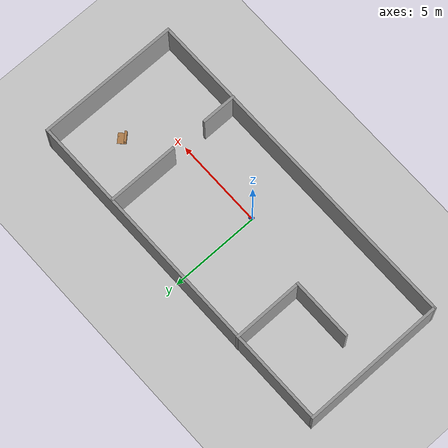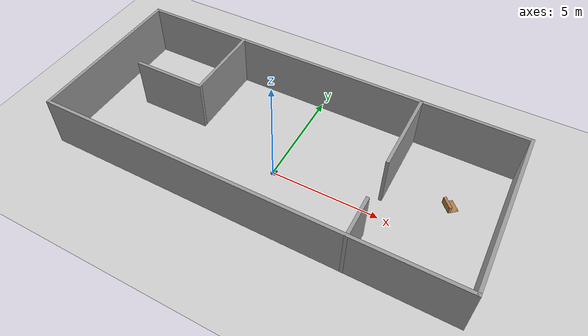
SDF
<sdf version="1.7">
 <world name="default">
  <light name="sun" type="directional">
   <pose>0 0 10 0 -0 0</pose>
   <diffuse>0.8 0.8 0.8 1</diffuse>
   <specular>0.2 0.2 0.2 1</specular>
   <attenuation>
    <range>1000</range>
    <constant>0.9</constant>
    <linear>0.01</linear>
    <quadratic>0.001</quadratic>
   </attenuation>
   <direction>-0.5 0.1 -0.9</direction>
   <spot><inner_angle>0</inner_angle><outer_angle>0</outer_angle><falloff>0</falloff></spot>
  </light>
  <model name="ground_plane">
   <static>1</static>
   <link name="link">
    <collision name="collision">
     <geometry><plane><normal>0 0 1</normal><size>100 100</size></plane></geometry>
     <surface>
      <contact><collide_bitmask>65535</collide_bitmask></contact>
      <friction><ode><mu>100</mu><mu2>50</mu2></ode></friction>
     </surface>
    </collision>
    <visual name="visual">
     <cast_shadows>0</cast_shadows>
     <geometry><plane><normal>0 0 1</normal><size>100 100</size></plane></geometry>
     <material>
      <script><uri>file://media/materials/scripts/gazebo.material</uri><name>Gazebo/Grey</name></script>
     </material>
    </visual>
   </link>
  </model>
  <gravity>0 0 -9.8</gravity>
  <magnetic_field>6e-06 2.3e-05 -4.2e-05</magnetic_field>
  <atmosphere type="adiabatic"/>
  <physics type="ode">
   <max_step_size>0.001</max_step_size>
   <real_time_factor>1</real_time_factor>
   <real_time_update_rate>1000</real_time_update_rate>
  </physics>
  <scene><ambient>0.4 0.4 0.4 1</ambient><background>0.7 0.7 0.7 1</background><shadows>1</shadows></scene>
  <audio><device>default</device></audio>
  <spherical_coordinates>
   <surface_model>EARTH_WGS84</surface_model>
   <latitude_deg>0</latitude_deg>
   <longitude_deg>0</longitude_deg>
   <elevation>0</elevation>
   <heading_deg>0</heading_deg>
  </spherical_coordinates>
  <model name="my_bot">
   <link name="base_link">
    <inertial>
     <pose>0.058676 0 0.043869 0 -0 0</pose>
     <mass>0.701</mass>
     <inertia>
      <ixx>0.00324724</ixx>
      <ixy>0</ixy>
      <ixz>0.000339625</ixz>
      <iyy>0.00355537</iyy>
      <iyz>0</iyz>
      <izz>0.00467089</izz>
     </inertia>
    </inertial>
    <collision name="base_link_fixed_joint_lump__chassis_collision">
     <pose>0.05251 0 0.037505 0 -0 0</pose>
     <geometry><box><size>0.225 0.225 0.07501</size></box></geometry>
    </collision>
    <collision name="base_link_fixed_joint_lump__caster_wheel_collision_1">
     <pose>0.10876 0 0 0 -0 0</pose>
     <geometry><sphere><radius>0.04</radius></sphere></geometry>
     <surface><friction><ode><mu>0.001</mu><mu2>0.001</mu2></ode></friction></surface>
    </collision>
    <collision name="base_link_fixed_joint_lump__laser_frame_collision_2">
     <pose>0.04001 0 0.12 0 -0 0</pose>
     <geometry><cylinder><length>0.025</length><radius>0.04</radius></cylinder></geometry>
    </collision>
    <collision name="base_link_fixed_joint_lump__imu_link_collision_3">
     <geometry><box><size>0.001 0.001 0.001</size></box></geometry>
    </collision>
    <visual name="base_link_fixed_joint_lump__chassis_visual">
     <pose>0.05251 0 0.037505 0 -0 0</pose>
     <geometry><box><size>0.225 0.225 0.07501</size></box></geometry>
     <material>
      <script><name>Gazebo/Blue</name><uri>file://media/materials/scripts/gazebo.material</uri></script>
     </material>
    </visual>
    <visual name="base_link_fixed_joint_lump__camera_link_visual_1">
     <pose>0.14001 0 0.10285 0 -0 0</pose>
     <geometry><box><size>0.005 0.025 0.025</size></box></geometry>
     <material>
      <script><name>Gazebo/Green</name><uri>file://media/materials/scripts/gazebo.material</uri></script>
     </material>
    </visual>
    <visual name="base_link_fixed_joint_lump__caster_wheel_visual_2">
     <pose>0.10876 0 0 0 -0 0</pose>
     <geometry><sphere><radius>0.04</radius></sphere></geometry>
     <material>
      <script><name>Gazebo/White</name><uri>file://media/materials/scripts/gazebo.material</uri></script>
     </material>
    </visual>
    <visual name="base_link_fixed_joint_lump__laser_frame_visual_3">
     <pose>0.04001 0 0.12 0 -0 0</pose>
     <geometry><cylinder><length>0.025</length><radius>0.04</radius></cylinder></geometry>
     <material>
      <script><name>Gazebo/Red</name><uri>file://media/materials/scripts/gazebo.material</uri></script>
     </material>
    </visual>
    <visual name="base_link_fixed_joint_lump__imu_link_visual_4">
     <geometry><box><size>0.001 0.001 0.001</size></box></geometry>
    </visual>
    <sensor name="camera" type="camera">
     <visualize>1</visualize>
     <update_rate>10</update_rate>
     <camera>
      <horizontal_fov>1.089</horizontal_fov>
      <image><format>R8G8B8</format><width>640</width><height>480</height></image>
      <clip><near>0.05</near><far>8</far></clip>
     </camera>
     <plugin name="camera_controller" filename="libgazebo_ros_camera.so">
      <frame_name>camera_link_optical</frame_name>
     </plugin>
     <pose>0.14001 0 0.10285 0 -0 0</pose>
    </sensor>
    <sensor name="laser" type="ray">
     <visualize>0</visualize>
     <update_rate>10</update_rate>
     <ray>
      <scan>
       <horizontal>
        <samples>360</samples>
        <min_angle>-3.14</min_angle>
        <max_angle>3.14</max_angle>
        <resolution>1</resolution>
       </horizontal>
       <vertical><samples>1</samples><min_angle>0</min_angle><max_angle>0</max_angle></vertical>
      </scan>
      <range><min>0.075</min><max>12</max></range>
     </ray>
     <plugin name="laser_controller" filename="libgazebo_ros_ray_sensor.so">
      <ros><argument>~/out:=scan</argument></ros>
      <output_type>sensor_msgs/LaserScan</output_type>
      <frame_name>laser_frame</frame_name>
     </plugin>
     <pose>0.04001 0 0.12 0 -0 0</pose>
    </sensor>
    <sensor name="imu_sensor" type="imu">
     <plugin name="imu_plugin" filename="libgazebo_ros_imu_sensor.so">
      <initial_orientation_as_reference>0</initial_orientation_as_reference>
      <frame_name>imu_link</frame_name>
      <ros><namespace>/imu</namespace><remapping>~/out:=data</remapping></ros>
     </plugin>
     <always_on>1</always_on>
     <update_rate>100</update_rate>
     <visualize>1</visualize>
     <imu>
      <angular_velocity>
       <x>
        <noise type="gaussian">
         <mean>0</mean>
         <stddev>0.0002</stddev>
         <bias_mean>7.5e-06</bias_mean>
         <bias_stddev>8e-07</bias_stddev>
        </noise>
       </x>
       <y>
        <noise type="gaussian">
         <mean>0</mean>
         <stddev>0.0002</stddev>
         <bias_mean>7.5e-06</bias_mean>
         <bias_stddev>8e-07</bias_stddev>
        </noise>
       </y>
       <z>
        <noise type="gaussian">
         <mean>0</mean>
         <stddev>0.0002</stddev>
         <bias_mean>7.5e-06</bias_mean>
         <bias_stddev>8e-07</bias_stddev>
        </noise>
       </z>
      </angular_velocity>
      <linear_acceleration>
       <x>
        <noise type="gaussian">
         <mean>0</mean>
         <stddev>0.017</stddev>
         <bias_mean>0.1</bias_mean>
         <bias_stddev>0.001</bias_stddev>
        </noise>
       </x>
       <y>
        <noise type="gaussian">
         <mean>0</mean>
         <stddev>0.017</stddev>
         <bias_mean>0.1</bias_mean>
         <bias_stddev>0.001</bias_stddev>
        </noise>
       </y>
       <z>
        <noise type="gaussian">
         <mean>0</mean>
         <stddev>0.017</stddev>
         <bias_mean>0.1</bias_mean>
         <bias_stddev>0.001</bias_stddev>
        </noise>
       </z>
      </linear_acceleration>
     </imu>
    </sensor>
   </link>
   <joint name="left_wheel_joint" type="revolute">
    <pose relative_to="base_link">0 0.11975 0 -1.5708 0 0</pose>
    <parent>base_link</parent>
    <child>left_wheel</child>
    <axis>
     <xyz>0 0 1</xyz>
     <limit><lower>-1e+16</lower><upper>1e+16</upper></limit>
     <dynamics><spring_reference>0</spring_reference><spring_stiffness>0</spring_stiffness></dynamics>
    </axis>
   </joint>
   <link name="left_wheel">
    <pose relative_to="left_wheel_joint">0 0 0 0 -0 0</pose>
    <inertial>
     <mass>0.1</mass>
     <inertia>
      <ixx>4.08333e-05</ixx>
      <ixy>0</ixy>
      <ixz>0</ixz>
      <iyy>4.08333e-05</iyy>
      <iyz>0</iyz>
      <izz>8e-05</izz>
     </inertia>
    </inertial>
    <collision name="left_wheel_collision">
     <geometry><cylinder><length>0.01</length><radius>0.04</radius></cylinder></geometry>
    </collision>
    <visual name="left_wheel_visual">
     <geometry><cylinder><length>0.01</length><radius>0.04</radius></cylinder></geometry>
     <material>
      <script><name>Gazebo/Black</name><uri>file://media/materials/scripts/gazebo.material</uri></script>
     </material>
    </visual>
   </link>
   <joint name="right_wheel_joint" type="revolute">
    <pose relative_to="base_link">0 -0.11975 0 1.5708 -0 0</pose>
    <parent>base_link</parent>
    <child>right_wheel</child>
    <axis>
     <xyz>0 0 -1</xyz>
     <limit><lower>-1e+16</lower><upper>1e+16</upper></limit>
     <dynamics><spring_reference>0</spring_reference><spring_stiffness>0</spring_stiffness></dynamics>
    </axis>
   </joint>
   <link name="right_wheel">
    <pose relative_to="right_wheel_joint">0 0 0 0 -0 0</pose>
    <inertial>
     <mass>0.1</mass>
     <inertia>
      <ixx>4.08333e-05</ixx>
      <ixy>0</ixy>
      <ixz>0</ixz>
      <iyy>4.08333e-05</iyy>
      <iyz>0</iyz>
      <izz>8e-05</izz>
     </inertia>
    </inertial>
    <collision name="right_wheel_collision">
     <geometry><cylinder><length>0.01</length><radius>0.04</radius></cylinder></geometry>
    </collision>
    <visual name="right_wheel_visual">
     <geometry><cylinder><length>0.01</length><radius>0.04</radius></cylinder></geometry>
     <material>
      <script><name>Gazebo/Black</name><uri>file://media/materials/scripts/gazebo.material</uri></script>
     </material>
    </visual>
   </link>
   <static>0</static>
   <plugin name="gazebo_ros2_control" filename="libgazebo_ros2_control.so">
    <parameters>/home/praveenrav702/comp_ws/install/autonomous_diffdrive_robot/share/autonomous_diffdrive_robot/config/my_controllers.yaml</parameters>
    <parameters>/home/praveenrav702/comp_ws/install/autonomous_diffdrive_robot/share/autonomous_diffdrive_robot/config/gaz_ros2_ctl_use_sim.yaml</parameters>
   </plugin>
   <pose>0.000287 2.4e-05 0.04 0 -0 0.002497</pose>
  </model>
  <model name="PFSmallRoom">
   <pose>-0.019693 0.945918 0 0 -0 0</pose>
   <link name="Wall_42">
    <collision name="Wall_42_Collision">
     <geometry><box><size>19.25 0.15 2.5</size></box></geometry>
     <pose>0 0 1.25 0 -0 0</pose>
    </collision>
    <visual name="Wall_42_Visual">
     <pose>0 0 1.25 0 -0 0</pose>
     <geometry><box><size>19.25 0.15 2.5</size></box></geometry>
     <material>
      <script><uri>file://media/materials/scripts/gazebo.material</uri><name>Gazebo/Grey</name></script>
      <ambient>1 1 1 1</ambient>
     </material>
     <meta><layer>0</layer></meta>
    </visual>
    <pose>0 -3.92803 0 0 -0 0</pose>
   </link>
   <link name="Wall_62">
    <collision name="Wall_62_Collision">
     <geometry><box><size>8 0.15 2.5</size></box></geometry>
     <pose>0 0 1.25 0 -0 0</pose>
    </collision>
    <visual name="Wall_62_Visual">
     <pose>0 0 1.25 0 -0 0</pose>
     <geometry><box><size>8 0.15 2.5</size></box></geometry>
     <material>
      <script><uri>file://media/materials/scripts/gazebo.material</uri><name>Gazebo/Grey</name></script>
      <ambient>1 1 1 1</ambient>
     </material>
     <meta><layer>0</layer></meta>
    </visual>
    <pose>-9.55 -0.003029 0 0 -0 1.5708</pose>
   </link>
   <link name="Wall_63">
    <collision name="Wall_63_Collision">
     <geometry><box><size>19.25 0.15 2.5</size></box></geometry>
     <pose>0 0 1.25 0 -0 0</pose>
    </collision>
    <visual name="Wall_63_Visual">
     <pose>0 0 1.25 0 -0 0</pose>
     <geometry><box><size>19.25 0.15 2.5</size></box></geometry>
     <material>
      <script><uri>file://media/materials/scripts/gazebo.material</uri><name>Gazebo/Grey</name></script>
      <ambient>1 1 1 1</ambient>
     </material>
     <meta><layer>0</layer></meta>
    </visual>
    <pose>0 3.92197 0 0 -0 0</pose>
   </link>
   <link name="Wall_64">
    <collision name="Wall_64_Collision">
     <geometry><box><size>8 0.15 2.5</size></box></geometry>
     <pose>0 0 1.25 0 -0 0</pose>
    </collision>
    <visual name="Wall_64_Visual">
     <pose>0 0 1.25 0 -0 0</pose>
     <geometry><box><size>8 0.15 2.5</size></box></geometry>
     <material>
      <script><uri>file://media/materials/scripts/gazebo.material</uri><name>Gazebo/Grey</name></script>
      <ambient>1 1 1 1</ambient>
     </material>
     <meta><layer>0</layer></meta>
    </visual>
    <pose>9.55 -0.003029 0 0 -0 -1.5708</pose>
   </link>
   <link name="Wall_67">
    <collision name="Wall_67_Collision">
     <geometry><box><size>4 0.15 2.5</size></box></geometry>
     <pose>0 0 1.25 0 -0 0</pose>
    </collision>
    <visual name="Wall_67_Visual">
     <pose>0 0 1.25 0 -0 0</pose>
     <geometry><box><size>4 0.15 2.5</size></box></geometry>
     <material>
      <script><uri>file://media/materials/scripts/gazebo.material</uri><name>Gazebo/Grey</name></script>
      <ambient>1 1 1 1</ambient>
     </material>
     <meta><layer>0</layer></meta>
    </visual>
    <pose>-4.32974 2.0097 0 0 -0 -1.5708</pose>
   </link>
   <link name="Wall_68">
    <collision name="Wall_68_Collision">
     <geometry><box><size>3.5 0.15 2.5</size></box></geometry>
     <pose>0 0 1.25 0 -0 0</pose>
    </collision>
    <visual name="Wall_68_Visual">
     <pose>0 0 1.25 0 -0 0</pose>
     <geometry><box><size>3.5 0.15 2.5</size></box></geometry>
     <material>
      <script><uri>file://media/materials/scripts/gazebo.material</uri><name>Gazebo/Grey</name></script>
      <ambient>1 1 1 1</ambient>
     </material>
     <meta><layer>0</layer></meta>
    </visual>
    <pose>-6.00474 0.084696 0 0 -0 3.14159</pose>
   </link>
   <link name="Wall_70">
    <collision name="Wall_70_Collision">
     <geometry><box><size>4 0.15 2.5</size></box></geometry>
     <pose>0 0 1.25 0 -0 0</pose>
    </collision>
    <visual name="Wall_70_Visual">
     <pose>0 0 1.25 0 -0 0</pose>
     <geometry><box><size>4 0.15 2.5</size></box></geometry>
     <material>
      <script><uri>file://media/materials/scripts/gazebo.material</uri><name>Gazebo/Grey</name></script>
      <ambient>1 1 1 1</ambient>
     </material>
     <meta><layer>0</layer></meta>
    </visual>
    <pose>4.76058 1.9403 0 0 -0 -1.5708</pose>
   </link>
   <link name="Wall_75">
    <collision name="Wall_75_Collision">
     <geometry><box><size>2 0.15 2.5</size></box></geometry>
     <pose>0 0 1.25 0 -0 0</pose>
    </collision>
    <visual name="Wall_75_Visual">
     <pose>0 0 1.25 0 -0 0</pose>
     <geometry><box><size>2 0.15 2.5</size></box></geometry>
     <material>
      <script><uri>file://media/materials/scripts/gazebo.material</uri><name>Gazebo/Grey</name></script>
      <ambient>1 1 1 1</ambient>
     </material>
     <meta><layer>0</layer></meta>
    </visual>
    <pose>4.76058 -3.0097 0 0 -0 -1.5708</pose>
   </link>
   <static>1</static>
  </model>
  <model name="wooden_case">
   <link name="base">
    <pose>0 0 0.024 0 -0 0</pose>
    <inertial>
     <pose>-0.022184 0 0.171592 0 -0 0</pose>
     <mass>3.96264</mass>
     <inertia>
      <ixx>0.213536</ixx>
      <ixy>0</ixy>
      <ixz>0.000779377</ixz>
      <iyy>0.0708943</iyy>
      <iyz>0</iyz>
      <izz>0.154604</izz>
     </inertia>
    </inertial>
    <collision name="collision_back">
     <pose>-0.053975 0 0.1778 0 -0 0</pose>
     <geometry><box><size>0.01905 0.5461 0.3175</size></box></geometry>
     <surface>
      <contact>
       <poissons_ratio>0.347</poissons_ratio>
       <elastic_modulus>8.8e+09</elastic_modulus>
       <ode><kp>100000</kp><kd>100</kd><max_vel>100</max_vel><min_depth>0.001</min_depth></ode>
      </contact>
      <friction>
       <torsional>
        <coefficient>1</coefficient>
        <use_patch_radius>0</use_patch_radius>
        <surface_radius>0.01</surface_radius>
       </torsional>
      </friction>
     </surface>
    </collision>
    <visual name="visual_back">
     <pose>-0.053975 0 0.1778 0 -0 0</pose>
     <geometry><box><size>0.01905 0.5461 0.3175</size></box></geometry>
     <material>
      <script><uri>file://media/materials/scripts/gazebo.material</uri><name>Gazebo/Wood</name></script>
     </material>
    </visual>
    <collision name="collision_bottom">
     <pose>0 0 0.009525 0 -0 0</pose>
     <geometry><box><size>0.127 0.5842 0.01905</size></box></geometry>
     <surface>
      <contact>
       <poissons_ratio>0.347</poissons_ratio>
       <elastic_modulus>8.8e+09</elastic_modulus>
       <ode><kp>100000</kp><kd>100</kd><max_vel>100</max_vel><min_depth>0.001</min_depth></ode>
      </contact>
      <friction>
       <torsional>
        <coefficient>1</coefficient>
        <use_patch_radius>0</use_patch_radius>
        <surface_radius>0.01</surface_radius>
       </torsional>
      </friction>
     </surface>
    </collision>
    <visual name="visual_bottom">
     <pose>0 0 0.009525 0 -0 0</pose>
     <geometry><box><size>0.127 0.5842 0.01905</size></box></geometry>
     <material>
      <script><uri>file://media/materials/scripts/gazebo.material</uri><name>Gazebo/Wood</name></script>
     </material>
    </visual>
    <collision name="collision_top">
     <pose>0 0 0.346075 0 -0 0</pose>
     <geometry><box><size>0.127 0.5842 0.01905</size></box></geometry>
     <surface>
      <contact>
       <poissons_ratio>0.347</poissons_ratio>
       <elastic_modulus>8.8e+09</elastic_modulus>
       <ode><kp>100000</kp><kd>100</kd><max_vel>100</max_vel><min_depth>0.001</min_depth></ode>
      </contact>
      <friction>
       <torsional>
        <coefficient>1</coefficient>
        <use_patch_radius>0</use_patch_radius>
        <surface_radius>0.01</surface_radius>
       </torsional>
      </friction>
     </surface>
    </collision>
    <visual name="visual_top">
     <pose>0 0 0.346075 0 -0 0</pose>
     <geometry><box><size>0.127 0.5842 0.01905</size></box></geometry>
     <material>
      <script><uri>file://media/materials/scripts/gazebo.material</uri><name>Gazebo/Wood</name></script>
     </material>
    </visual>
    <collision name="collision_left">
     <pose>0 -0.282575 0.1778 0 -0 0</pose>
     <geometry><box><size>0.127 0.01905 0.3175</size></box></geometry>
     <surface>
      <contact>
       <poissons_ratio>0.347</poissons_ratio>
       <elastic_modulus>8.8e+09</elastic_modulus>
       <ode><kp>100000</kp><kd>100</kd><max_vel>100</max_vel><min_depth>0.001</min_depth></ode>
      </contact>
      <friction>
       <torsional>
        <coefficient>1</coefficient>
        <use_patch_radius>0</use_patch_radius>
        <surface_radius>0.01</surface_radius>
       </torsional>
      </friction>
     </surface>
    </collision>
    <visual name="visual_left">
     <pose>0 -0.282575 0.1778 0 -0 0</pose>
     <geometry><box><size>0.127 0.01905 0.3175</size></box></geometry>
     <material>
      <script><uri>file://media/materials/scripts/gazebo.material</uri><name>Gazebo/Wood</name></script>
     </material>
    </visual>
    <collision name="collision_right">
     <pose>0 0.282575 0.1778 0 -0 0</pose>
     <geometry><box><size>0.127 0.01905 0.3175</size></box></geometry>
     <surface>
      <contact>
       <poissons_ratio>0.347</poissons_ratio>
       <elastic_modulus>8.8e+09</elastic_modulus>
       <ode><kp>100000</kp><kd>100</kd><max_vel>100</max_vel><min_depth>0.001</min_depth></ode>
      </contact>
      <friction>
       <torsional>
        <coefficient>1</coefficient>
        <use_patch_radius>0</use_patch_radius>
        <surface_radius>0.01</surface_radius>
       </torsional>
      </friction>
     </surface>
    </collision>
    <visual name="visual_right">
     <pose>0 0.282575 0.1778 0 -0 0</pose>
     <geometry><box><size>0.127 0.01905 0.3175</size></box></geometry>
     <material>
      <script><uri>file://media/materials/scripts/gazebo.material</uri><name>Gazebo/Wood</name></script>
     </material>
    </visual>
    <collision name="collision_block_left">
     <pose>0.0095 -0.2151 -0.012 0 -0 0</pose>
     <geometry><box><size>0.108 0.05 0.024</size></box></geometry>
     <surface>
      <contact>
       <poissons_ratio>0.347</poissons_ratio>
       <elastic_modulus>8.8e+09</elastic_modulus>
       <ode><kp>100000</kp><kd>100</kd><max_vel>100</max_vel><min_depth>0.001</min_depth></ode>
      </contact>
      <friction>
       <torsional>
        <coefficient>1</coefficient>
        <use_patch_radius>0</use_patch_radius>
        <surface_radius>0.01</surface_radius>
       </torsional>
      </friction>
     </surface>
    </collision>
    <visual name="visual_block_left">
     <pose>0.0095 -0.2151 -0.012 0 -0 0</pose>
     <geometry><box><size>0.108 0.05 0.024</size></box></geometry>
     <material>
      <script><uri>file://media/materials/scripts/gazebo.material</uri><name>Gazebo/Wood</name></script>
     </material>
    </visual>
    <collision name="collision_block_right">
     <pose>0.0095 0.2151 -0.012 0 -0 0</pose>
     <geometry><box><size>0.108 0.05 0.024</size></box></geometry>
     <surface>
      <contact>
       <poissons_ratio>0.347</poissons_ratio>
       <elastic_modulus>8.8e+09</elastic_modulus>
       <ode><kp>100000</kp><kd>100</kd><max_vel>100</max_vel><min_depth>0.001</min_depth></ode>
      </contact>
      <friction>
       <torsional>
        <coefficient>1</coefficient>
        <use_patch_radius>0</use_patch_radius>
        <surface_radius>0.01</surface_radius>
       </torsional>
      </friction>
     </surface>
    </collision>
    <visual name="visual_block_right">
     <pose>0.0095 0.2151 -0.012 0 -0 0</pose>
     <geometry><box><size>0.108 0.05 0.024</size></box></geometry>
     <material>
      <script><uri>file://media/materials/scripts/gazebo.material</uri><name>Gazebo/Wood</name></script>
     </material>
    </visual>
   </link>
   <link name="lid">
    <pose>0.243775 0 0.009525 0 -0 0</pose>
    <inertial>
     <mass>1.97874</mass>
     <inertia>
      <ixx>0.0563367</ixx>
      <ixy>0</ixy>
      <ixz>0</ixz>
      <iyy>0.020911</iyy>
      <iyz>0</iyz>
      <izz>0.0771281</izz>
     </inertia>
    </inertial>
    <collision name="collision">
     <geometry><box><size>0.3556 0.5842 0.01905</size></box></geometry>
     <surface>
      <contact>
       <poissons_ratio>0.347</poissons_ratio>
       <elastic_modulus>8.8e+09</elastic_modulus>
       <ode><kp>100000</kp><kd>100</kd><max_vel>100</max_vel><min_depth>0.001</min_depth></ode>
      </contact>
      <friction>
       <torsional>
        <coefficient>1</coefficient>
        <use_patch_radius>0</use_patch_radius>
        <surface_radius>0.01</surface_radius>
       </torsional>
      </friction>
     </surface>
    </collision>
    <visual name="visual">
     <geometry><box><size>0.3556 0.5842 0.01905</size></box></geometry>
     <material>
      <script><uri>file://media/materials/scripts/gazebo.material</uri><name>Gazebo/Wood</name></script>
     </material>
    </visual>
    <visual name="tee_nut_1">
     <pose>0.122 -0.216 0 0 -0 0</pose>
     <geometry><cylinder><radius>0.00635</radius><length>0.0192405</length></cylinder></geometry>
     <material>
      <script><uri>file://media/materials/scripts/gazebo.material</uri><name>Gazebo/Grey</name></script>
     </material>
    </visual>
    <visual name="tee_nut_2">
     <pose>0.122 -0.088 0 0 -0 0</pose>
     <geometry><cylinder><radius>0.00635</radius><length>0.0192405</length></cylinder></geometry>
     <material>
      <script><uri>file://media/materials/scripts/gazebo.material</uri><name>Gazebo/Grey</name></script>
     </material>
    </visual>
    <visual name="tee_nut_3">
     <pose>0.122 0.088 0 0 -0 0</pose>
     <geometry><cylinder><radius>0.00635</radius><length>0.0192405</length></cylinder></geometry>
     <material>
      <script><uri>file://media/materials/scripts/gazebo.material</uri><name>Gazebo/Grey</name></script>
     </material>
    </visual>
    <visual name="tee_nut_4">
     <pose>0.122 0.216 0 0 -0 0</pose>
     <geometry><cylinder><radius>0.00635</radius><length>0.0192405</length></cylinder></geometry>
     <material>
      <script><uri>file://media/materials/scripts/gazebo.material</uri><name>Gazebo/Grey</name></script>
     </material>
    </visual>
   </link>
   <joint name="lid_hinge" type="revolute">
    <pose>-0.1778 0 0.01905 0 -0 0</pose>
    <parent>base</parent>
    <child>lid</child>
    <axis>
     <xyz>0 1 0</xyz>
     <limit><upper>0.523599</upper><lower>-1.5708</lower></limit>
     <dynamics><spring_reference>0</spring_reference><spring_stiffness>0</spring_stiffness></dynamics>
    </axis>
   </joint>
   <pose>7.35635 1.87962 -0.001057 0 -0.000429 0.75</pose>
  </model>
 </world>
</sdf>
